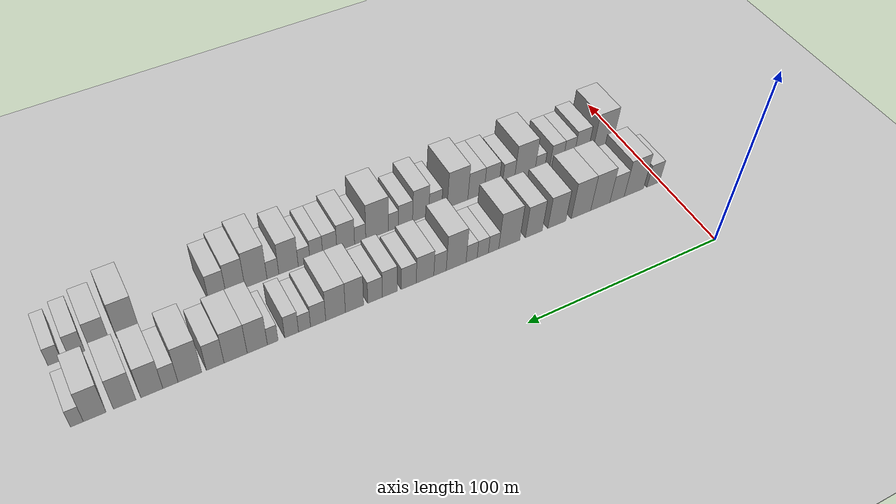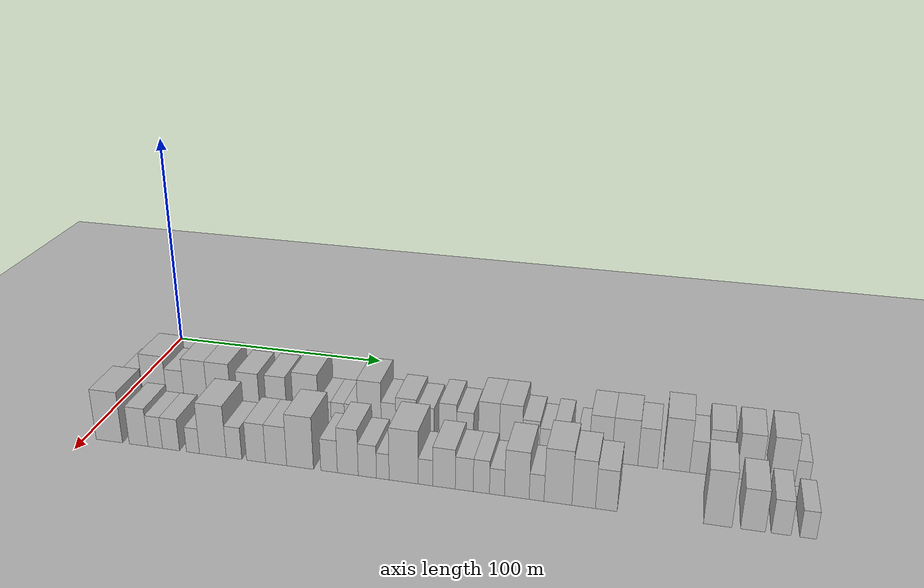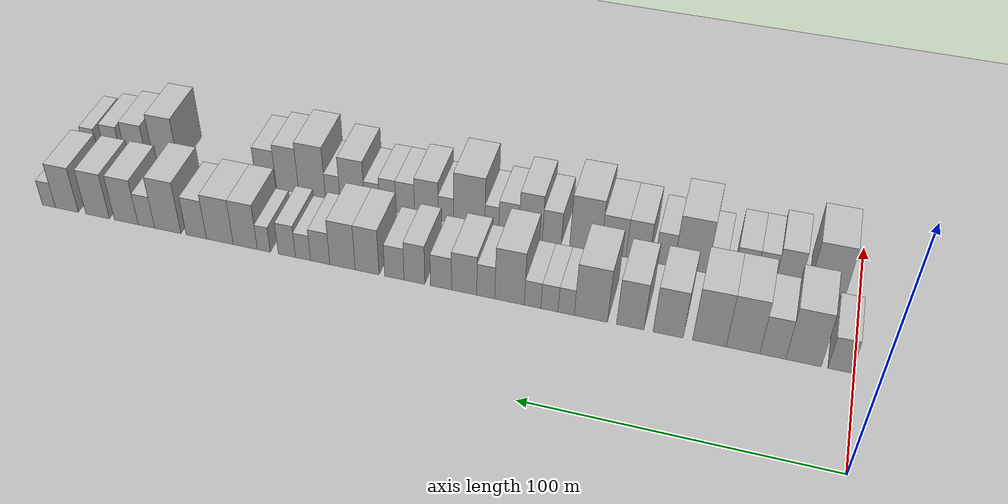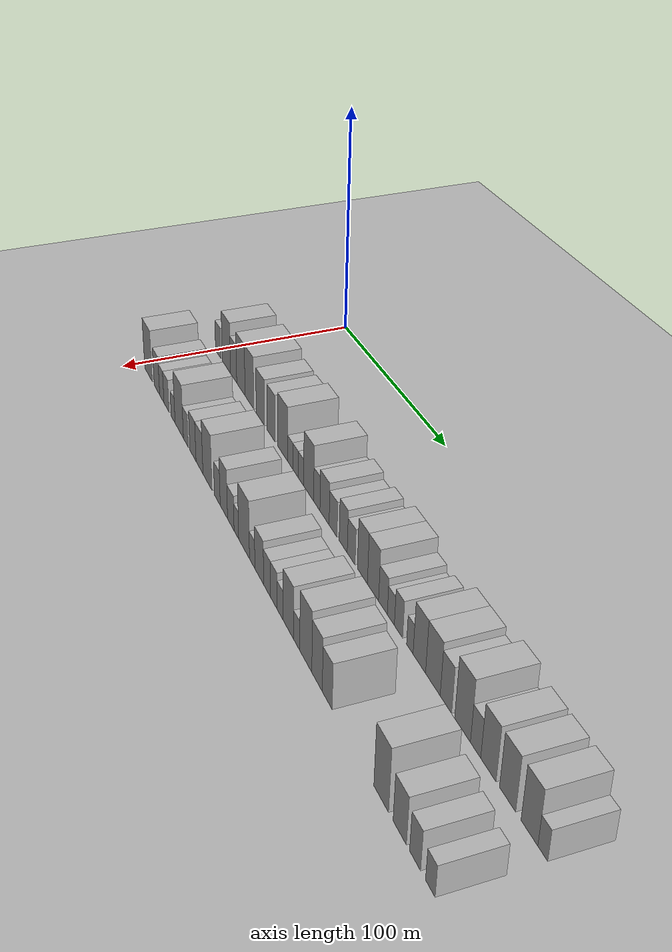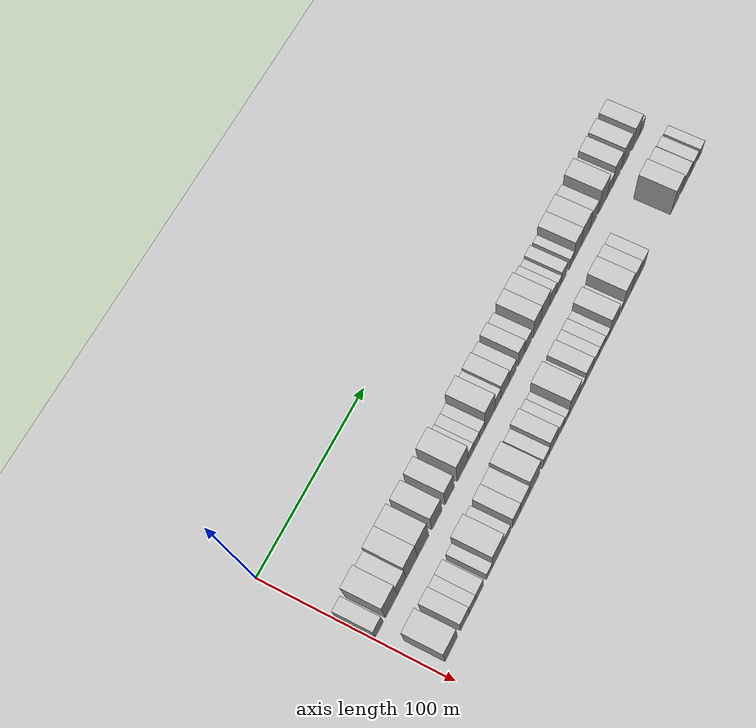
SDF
<sdf version="1.6">
 <world name="default">
  <include><name>ground_plane_1</name><uri>model://HANNAS_ground_plane</uri></include>
  <include>
   <name>ground_plane_2</name>
   <uri>model://HANNAS_ground_plane</uri>
   <pose>100 0 0  0 0 0</pose>
  </include>
  <model name="building_32">
   <static>1</static>
   <pose>50.0000 4.6460 0 0.000000 0.000000 0.000000</pose>
   <link name="link">
    <pose>0 0 7.50 0 0 0</pose>
    <collision name="collision"><geometry><box><size>20.0000 7.4196 15.0000</size></box></geometry></collision>
    <visual name="visual">
     <cast_shadows>0</cast_shadows>
     <geometry><box><size>20.0000 7.4196 15.0000</size></box></geometry>
     <material>
      <script>
       <uri>model://HANNAS_wall/materials/scripts</uri>
       <uri>model://HANNAS_wall/materials/textures</uri>
       <name>vrc/HANNAS_wall</name>
      </script>
     </material>
    </visual>
   </link>
  </model>
  <model name="building_33">
   <static>1</static>
   <pose>50.0000 15.9252 0 0.000000 0.000000 0.000000</pose>
   <link name="link">
    <pose>0 0 12.00 0 0 0</pose>
    <collision name="collision"><geometry><box><size>20.0000 11.1387 24.0000</size></box></geometry></collision>
    <visual name="visual">
     <cast_shadows>0</cast_shadows>
     <geometry><box><size>20.0000 11.1387 24.0000</size></box></geometry>
     <material>
      <script>
       <uri>model://HANNAS_wall/materials/scripts</uri>
       <uri>model://HANNAS_wall/materials/textures</uri>
       <name>vrc/HANNAS_wall</name>
      </script>
     </material>
    </visual>
   </link>
  </model>
  <model name="building_34">
   <static>1</static>
   <pose>50.0000 25.6019 0 0.000000 0.000000 0.000000</pose>
   <link name="link">
    <pose>0 0 9.00 0 0 0</pose>
    <collision name="collision"><geometry><box><size>20.0000 8.2147 18.0000</size></box></geometry></collision>
    <visual name="visual">
     <cast_shadows>0</cast_shadows>
     <geometry><box><size>20.0000 8.2147 18.0000</size></box></geometry>
     <material>
      <script>
       <uri>model://HANNAS_wall/materials/scripts</uri>
       <uri>model://HANNAS_wall/materials/textures</uri>
       <name>vrc/HANNAS_wall</name>
      </script>
     </material>
    </visual>
   </link>
  </model>
  <model name="building_35">
   <static>1</static>
   <pose>50.0000 35.0793 0 0.000000 0.000000 0.000000</pose>
   <link name="link">
    <pose>0 0 12.00 0 0 0</pose>
    <collision name="collision"><geometry><box><size>20.0000 10.7403 24.0000</size></box></geometry></collision>
    <visual name="visual">
     <cast_shadows>0</cast_shadows>
     <geometry><box><size>20.0000 10.7403 24.0000</size></box></geometry>
     <material>
      <script>
       <uri>model://HANNAS_wall/materials/scripts</uri>
       <uri>model://HANNAS_wall/materials/textures</uri>
       <name>vrc/HANNAS_wall</name>
      </script>
     </material>
    </visual>
   </link>
  </model>
  <model name="building_36">
   <static>1</static>
   <pose>50.0000 45.8633 0 0.000000 0.000000 0.000000</pose>
   <link name="link">
    <pose>0 0 12.00 0 0 0</pose>
    <collision name="collision"><geometry><box><size>20.0000 10.8276 24.0000</size></box></geometry></collision>
    <visual name="visual">
     <cast_shadows>0</cast_shadows>
     <geometry><box><size>20.0000 10.8276 24.0000</size></box></geometry>
     <material>
      <script>
       <uri>model://HANNAS_wall/materials/scripts</uri>
       <uri>model://HANNAS_wall/materials/textures</uri>
       <name>vrc/HANNAS_wall</name>
      </script>
     </material>
    </visual>
   </link>
  </model>
  <model name="building_37">
   <static>1</static>
   <pose>50.0000 59.2102 0 0.000000 0.000000 0.000000</pose>
   <link name="link">
    <pose>0 0 10.50 0 0 0</pose>
    <collision name="collision"><geometry><box><size>20.0000 9.8662 21.0000</size></box></geometry></collision>
    <visual name="visual">
     <cast_shadows>0</cast_shadows>
     <geometry><box><size>20.0000 9.8662 21.0000</size></box></geometry>
     <material>
      <script>
       <uri>model://HANNAS_wall/materials/scripts</uri>
       <uri>model://HANNAS_wall/materials/textures</uri>
       <name>vrc/HANNAS_wall</name>
      </script>
     </material>
    </visual>
   </link>
  </model>
  <model name="building_38">
   <static>1</static>
   <pose>50.0000 71.6752 0 0.000000 0.000000 0.000000</pose>
   <link name="link">
    <pose>0 0 10.50 0 0 0</pose>
    <collision name="collision"><geometry><box><size>20.0000 9.0639 21.0000</size></box></geometry></collision>
    <visual name="visual">
     <cast_shadows>0</cast_shadows>
     <geometry><box><size>20.0000 9.0639 21.0000</size></box></geometry>
     <material>
      <script>
       <uri>model://HANNAS_wall/materials/scripts</uri>
       <uri>model://HANNAS_wall/materials/textures</uri>
       <name>vrc/HANNAS_wall</name>
      </script>
     </material>
    </visual>
   </link>
  </model>
  <model name="building_39">
   <static>1</static>
   <pose>50.0000 84.7758 0 0.000000 0.000000 0.000000</pose>
   <link name="link">
    <pose>0 0 12.00 0 0 0</pose>
    <collision name="collision"><geometry><box><size>20.0000 11.1372 24.0000</size></box></geometry></collision>
    <visual name="visual">
     <cast_shadows>0</cast_shadows>
     <geometry><box><size>20.0000 11.1372 24.0000</size></box></geometry>
     <material>
      <script>
       <uri>model://HANNAS_wall/materials/scripts</uri>
       <uri>model://HANNAS_wall/materials/textures</uri>
       <name>vrc/HANNAS_wall</name>
      </script>
     </material>
    </visual>
   </link>
  </model>
  <model name="building_40">
   <static>1</static>
   <pose>50.0000 93.0737 0 0.000000 0.000000 0.000000</pose>
   <link name="link">
    <pose>0 0 6.00 0 0 0</pose>
    <collision name="collision"><geometry><box><size>20.0000 5.4587 12.0000</size></box></geometry></collision>
    <visual name="visual">
     <cast_shadows>0</cast_shadows>
     <geometry><box><size>20.0000 5.4587 12.0000</size></box></geometry>
     <material>
      <script>
       <uri>model://HANNAS_wall/materials/scripts</uri>
       <uri>model://HANNAS_wall/materials/textures</uri>
       <name>vrc/HANNAS_wall</name>
      </script>
     </material>
    </visual>
   </link>
  </model>
  <model name="building_41">
   <static>1</static>
   <pose>50.0000 98.7176 0 0.000000 0.000000 0.000000</pose>
   <link name="link">
    <pose>0 0 6.00 0 0 0</pose>
    <collision name="collision"><geometry><box><size>20.0000 5.8290 12.0000</size></box></geometry></collision>
    <visual name="visual">
     <cast_shadows>0</cast_shadows>
     <geometry><box><size>20.0000 5.8290 12.0000</size></box></geometry>
     <material>
      <script>
       <uri>model://HANNAS_wall/materials/scripts</uri>
       <uri>model://HANNAS_wall/materials/textures</uri>
       <name>vrc/HANNAS_wall</name>
      </script>
     </material>
    </visual>
   </link>
  </model>
  <model name="building_42">
   <static>1</static>
   <pose>50.0000 104.4853 0 0.000000 0.000000 0.000000</pose>
   <link name="link">
    <pose>0 0 6.00 0 0 0</pose>
    <collision name="collision"><geometry><box><size>20.0000 5.7064 12.0000</size></box></geometry></collision>
    <visual name="visual">
     <cast_shadows>0</cast_shadows>
     <geometry><box><size>20.0000 5.7064 12.0000</size></box></geometry>
     <material>
      <script>
       <uri>model://HANNAS_wall/materials/scripts</uri>
       <uri>model://HANNAS_wall/materials/textures</uri>
       <name>vrc/HANNAS_wall</name>
      </script>
     </material>
    </visual>
   </link>
  </model>
  <model name="building_43">
   <static>1</static>
   <pose>50.0000 112.4005 0 0.000000 0.000000 0.000000</pose>
   <link name="link">
    <pose>0 0 12.00 0 0 0</pose>
    <collision name="collision"><geometry><box><size>20.0000 10.1241 24.0000</size></box></geometry></collision>
    <visual name="visual">
     <cast_shadows>0</cast_shadows>
     <geometry><box><size>20.0000 10.1241 24.0000</size></box></geometry>
     <material>
      <script>
       <uri>model://HANNAS_wall/materials/scripts</uri>
       <uri>model://HANNAS_wall/materials/textures</uri>
       <name>vrc/HANNAS_wall</name>
      </script>
     </material>
    </visual>
   </link>
  </model>
  <model name="building_44">
   <static>1</static>
   <pose>50.0000 120.5870 0 0.000000 0.000000 0.000000</pose>
   <link name="link">
    <pose>0 0 7.50 0 0 0</pose>
    <collision name="collision"><geometry><box><size>20.0000 6.2488 15.0000</size></box></geometry></collision>
    <visual name="visual">
     <cast_shadows>0</cast_shadows>
     <geometry><box><size>20.0000 6.2488 15.0000</size></box></geometry>
     <material>
      <script>
       <uri>model://HANNAS_wall/materials/scripts</uri>
       <uri>model://HANNAS_wall/materials/textures</uri>
       <name>vrc/HANNAS_wall</name>
      </script>
     </material>
    </visual>
   </link>
  </model>
  <model name="building_45">
   <static>1</static>
   <pose>50.0000 128.1195 0 0.000000 0.000000 0.000000</pose>
   <link name="link">
    <pose>0 0 9.00 0 0 0</pose>
    <collision name="collision"><geometry><box><size>20.0000 8.8162 18.0000</size></box></geometry></collision>
    <visual name="visual">
     <cast_shadows>0</cast_shadows>
     <geometry><box><size>20.0000 8.8162 18.0000</size></box></geometry>
     <material>
      <script>
       <uri>model://HANNAS_wall/materials/scripts</uri>
       <uri>model://HANNAS_wall/materials/textures</uri>
       <name>vrc/HANNAS_wall</name>
      </script>
     </material>
    </visual>
   </link>
  </model>
  <model name="building_46">
   <static>1</static>
   <pose>50.0000 136.2203 0 0.000000 0.000000 0.000000</pose>
   <link name="link">
    <pose>0 0 7.50 0 0 0</pose>
    <collision name="collision"><geometry><box><size>20.0000 7.3854 15.0000</size></box></geometry></collision>
    <visual name="visual">
     <cast_shadows>0</cast_shadows>
     <geometry><box><size>20.0000 7.3854 15.0000</size></box></geometry>
     <material>
      <script>
       <uri>model://HANNAS_wall/materials/scripts</uri>
       <uri>model://HANNAS_wall/materials/textures</uri>
       <name>vrc/HANNAS_wall</name>
      </script>
     </material>
    </visual>
   </link>
  </model>
  <model name="building_47">
   <static>1</static>
   <pose>50.0000 145.5821 0 0.000000 0.000000 0.000000</pose>
   <link name="link">
    <pose>0 0 9.00 0 0 0</pose>
    <collision name="collision"><geometry><box><size>20.0000 7.3381 18.0000</size></box></geometry></collision>
    <visual name="visual">
     <cast_shadows>0</cast_shadows>
     <geometry><box><size>20.0000 7.3381 18.0000</size></box></geometry>
     <material>
      <script>
       <uri>model://HANNAS_wall/materials/scripts</uri>
       <uri>model://HANNAS_wall/materials/textures</uri>
       <name>vrc/HANNAS_wall</name>
      </script>
     </material>
    </visual>
   </link>
  </model>
  <model name="building_48">
   <static>1</static>
   <pose>50.0000 152.7194 0 0.000000 0.000000 0.000000</pose>
   <link name="link">
    <pose>0 0 7.50 0 0 0</pose>
    <collision name="collision"><geometry><box><size>20.0000 6.9367 15.0000</size></box></geometry></collision>
    <visual name="visual">
     <cast_shadows>0</cast_shadows>
     <geometry><box><size>20.0000 6.9367 15.0000</size></box></geometry>
     <material>
      <script>
       <uri>model://HANNAS_wall/materials/scripts</uri>
       <uri>model://HANNAS_wall/materials/textures</uri>
       <name>vrc/HANNAS_wall</name>
      </script>
     </material>
    </visual>
   </link>
  </model>
  <model name="building_49">
   <static>1</static>
   <pose>50.0000 162.5061 0 0.000000 0.000000 0.000000</pose>
   <link name="link">
    <pose>0 0 10.50 0 0 0</pose>
    <collision name="collision"><geometry><box><size>20.0000 8.6366 21.0000</size></box></geometry></collision>
    <visual name="visual">
     <cast_shadows>0</cast_shadows>
     <geometry><box><size>20.0000 8.6366 21.0000</size></box></geometry>
     <material>
      <script>
       <uri>model://HANNAS_wall/materials/scripts</uri>
       <uri>model://HANNAS_wall/materials/textures</uri>
       <name>vrc/HANNAS_wall</name>
      </script>
     </material>
    </visual>
   </link>
  </model>
  <model name="building_50">
   <static>1</static>
   <pose>50.0000 171.4507 0 0.000000 0.000000 0.000000</pose>
   <link name="link">
    <pose>0 0 10.50 0 0 0</pose>
    <collision name="collision"><geometry><box><size>20.0000 9.2527 21.0000</size></box></geometry></collision>
    <visual name="visual">
     <cast_shadows>0</cast_shadows>
     <geometry><box><size>20.0000 9.2527 21.0000</size></box></geometry>
     <material>
      <script>
       <uri>model://HANNAS_wall/materials/scripts</uri>
       <uri>model://HANNAS_wall/materials/textures</uri>
       <name>vrc/HANNAS_wall</name>
      </script>
     </material>
    </visual>
   </link>
  </model>
  <model name="building_51">
   <static>1</static>
   <pose>50.0000 179.6038 0 0.000000 0.000000 0.000000</pose>
   <link name="link">
    <pose>0 0 7.50 0 0 0</pose>
    <collision name="collision"><geometry><box><size>20.0000 7.0533 15.0000</size></box></geometry></collision>
    <visual name="visual">
     <cast_shadows>0</cast_shadows>
     <geometry><box><size>20.0000 7.0533 15.0000</size></box></geometry>
     <material>
      <script>
       <uri>model://HANNAS_wall/materials/scripts</uri>
       <uri>model://HANNAS_wall/materials/textures</uri>
       <name>vrc/HANNAS_wall</name>
      </script>
     </material>
    </visual>
   </link>
  </model>
  <model name="building_52">
   <static>1</static>
   <pose>50.0000 185.9106 0 0.000000 0.000000 0.000000</pose>
   <link name="link">
    <pose>0 0 6.00 0 0 0</pose>
    <collision name="collision"><geometry><box><size>20.0000 5.5605 12.0000</size></box></geometry></collision>
    <visual name="visual">
     <cast_shadows>0</cast_shadows>
     <geometry><box><size>20.0000 5.5605 12.0000</size></box></geometry>
     <material>
      <script>
       <uri>model://HANNAS_wall/materials/scripts</uri>
       <uri>model://HANNAS_wall/materials/textures</uri>
       <name>vrc/HANNAS_wall</name>
      </script>
     </material>
    </visual>
   </link>
  </model>
  <model name="building_53">
   <static>1</static>
   <pose>50.0000 191.8633 0 0.000000 0.000000 0.000000</pose>
   <link name="link">
    <pose>0 0 7.50 0 0 0</pose>
    <collision name="collision"><geometry><box><size>20.0000 6.3448 15.0000</size></box></geometry></collision>
    <visual name="visual">
     <cast_shadows>0</cast_shadows>
     <geometry><box><size>20.0000 6.3448 15.0000</size></box></geometry>
     <material>
      <script>
       <uri>model://HANNAS_wall/materials/scripts</uri>
       <uri>model://HANNAS_wall/materials/textures</uri>
       <name>vrc/HANNAS_wall</name>
      </script>
     </material>
    </visual>
   </link>
  </model>
  <model name="building_54">
   <static>1</static>
   <pose>50.0000 200.4513 0 0.000000 0.000000 0.000000</pose>
   <link name="link">
    <pose>0 0 6.00 0 0 0</pose>
    <collision name="collision"><geometry><box><size>20.0000 4.8313 12.0000</size></box></geometry></collision>
    <visual name="visual">
     <cast_shadows>0</cast_shadows>
     <geometry><box><size>20.0000 4.8313 12.0000</size></box></geometry>
     <material>
      <script>
       <uri>model://HANNAS_wall/materials/scripts</uri>
       <uri>model://HANNAS_wall/materials/textures</uri>
       <name>vrc/HANNAS_wall</name>
      </script>
     </material>
    </visual>
   </link>
  </model>
  <model name="building_55">
   <static>1</static>
   <pose>50.0000 207.3987 0 0.000000 0.000000 0.000000</pose>
   <link name="link">
    <pose>0 0 10.50 0 0 0</pose>
    <collision name="collision"><geometry><box><size>20.0000 9.0634 21.0000</size></box></geometry></collision>
    <visual name="visual">
     <cast_shadows>0</cast_shadows>
     <geometry><box><size>20.0000 9.0634 21.0000</size></box></geometry>
     <material>
      <script>
       <uri>model://HANNAS_wall/materials/scripts</uri>
       <uri>model://HANNAS_wall/materials/textures</uri>
       <name>vrc/HANNAS_wall</name>
      </script>
     </material>
    </visual>
   </link>
  </model>
  <model name="building_56">
   <static>1</static>
   <pose>50.0000 217.0334 0 0.000000 0.000000 0.000000</pose>
   <link name="link">
    <pose>0 0 10.50 0 0 0</pose>
    <collision name="collision"><geometry><box><size>20.0000 10.2062 21.0000</size></box></geometry></collision>
    <visual name="visual">
     <cast_shadows>0</cast_shadows>
     <geometry><box><size>20.0000 10.2062 21.0000</size></box></geometry>
     <material>
      <script>
       <uri>model://HANNAS_wall/materials/scripts</uri>
       <uri>model://HANNAS_wall/materials/textures</uri>
       <name>vrc/HANNAS_wall</name>
      </script>
     </material>
    </visual>
   </link>
  </model>
  <model name="building_57">
   <static>1</static>
   <pose>50.0000 226.0095 0 0.000000 0.000000 0.000000</pose>
   <link name="link">
    <pose>0 0 9.00 0 0 0</pose>
    <collision name="collision"><geometry><box><size>20.0000 7.7459 18.0000</size></box></geometry></collision>
    <visual name="visual">
     <cast_shadows>0</cast_shadows>
     <geometry><box><size>20.0000 7.7459 18.0000</size></box></geometry>
     <material>
      <script>
       <uri>model://HANNAS_wall/materials/scripts</uri>
       <uri>model://HANNAS_wall/materials/textures</uri>
       <name>vrc/HANNAS_wall</name>
      </script>
     </material>
    </visual>
   </link>
  </model>
  <model name="building_58">
   <static>1</static>
   <pose>50.0000 236.9775 0 0.000000 0.000000 0.000000</pose>
   <link name="link">
    <pose>0 0 12.00 0 0 0</pose>
    <collision name="collision"><geometry><box><size>20.0000 10.1901 24.0000</size></box></geometry></collision>
    <visual name="visual">
     <cast_shadows>0</cast_shadows>
     <geometry><box><size>20.0000 10.1901 24.0000</size></box></geometry>
     <material>
      <script>
       <uri>model://HANNAS_wall/materials/scripts</uri>
       <uri>model://HANNAS_wall/materials/textures</uri>
       <name>vrc/HANNAS_wall</name>
      </script>
     </material>
    </visual>
   </link>
  </model>
  <model name="building_59">
   <static>1</static>
   <pose>50.0000 245.2832 0 0.000000 0.000000 0.000000</pose>
   <link name="link">
    <pose>0 0 7.50 0 0 0</pose>
    <collision name="collision"><geometry><box><size>20.0000 6.4213 15.0000</size></box></geometry></collision>
    <visual name="visual">
     <cast_shadows>0</cast_shadows>
     <geometry><box><size>20.0000 6.4213 15.0000</size></box></geometry>
     <material>
      <script>
       <uri>model://HANNAS_wall/materials/scripts</uri>
       <uri>model://HANNAS_wall/materials/textures</uri>
       <name>vrc/HANNAS_wall</name>
      </script>
     </material>
    </visual>
   </link>
  </model>
  <model name="building_60">
   <static>1</static>
   <pose>50.0000 253.1421 0 0.000000 0.000000 0.000000</pose>
   <link name="link">
    <pose>0 0 10.50 0 0 0</pose>
    <collision name="collision"><geometry><box><size>20.0000 9.2964 21.0000</size></box></geometry></collision>
    <visual name="visual">
     <cast_shadows>0</cast_shadows>
     <geometry><box><size>20.0000 9.2964 21.0000</size></box></geometry>
     <material>
      <script>
       <uri>model://HANNAS_wall/materials/scripts</uri>
       <uri>model://HANNAS_wall/materials/textures</uri>
       <name>vrc/HANNAS_wall</name>
      </script>
     </material>
    </visual>
   </link>
  </model>
  <model name="building_61">
   <static>1</static>
   <pose>50.0000 264.4500 0 0.000000 0.000000 0.000000</pose>
   <link name="link">
    <pose>0 0 10.50 0 0 0</pose>
    <collision name="collision"><geometry><box><size>20.0000 9.3195 21.0000</size></box></geometry></collision>
    <visual name="visual">
     <cast_shadows>0</cast_shadows>
     <geometry><box><size>20.0000 9.3195 21.0000</size></box></geometry>
     <material>
      <script>
       <uri>model://HANNAS_wall/materials/scripts</uri>
       <uri>model://HANNAS_wall/materials/textures</uri>
       <name>vrc/HANNAS_wall</name>
      </script>
     </material>
    </visual>
   </link>
  </model>
  <model name="building_62">
   <static>1</static>
   <pose>50.0000 276.6973 0 0.000000 0.000000 0.000000</pose>
   <link name="link">
    <pose>0 0 10.50 0 0 0</pose>
    <collision name="collision"><geometry><box><size>20.0000 9.1751 21.0000</size></box></geometry></collision>
    <visual name="visual">
     <cast_shadows>0</cast_shadows>
     <geometry><box><size>20.0000 9.1751 21.0000</size></box></geometry>
     <material>
      <script>
       <uri>model://HANNAS_wall/materials/scripts</uri>
       <uri>model://HANNAS_wall/materials/textures</uri>
       <name>vrc/HANNAS_wall</name>
      </script>
     </material>
    </visual>
   </link>
  </model>
  <model name="building_63">
   <static>1</static>
   <pose>50.0000 283.9073 0 0.000000 0.000000 0.000000</pose>
   <link name="link">
    <pose>0 0 6.00 0 0 0</pose>
    <collision name="collision"><geometry><box><size>20.0000 5.2448 12.0000</size></box></geometry></collision>
    <visual name="visual">
     <cast_shadows>0</cast_shadows>
     <geometry><box><size>20.0000 5.2448 12.0000</size></box></geometry>
     <material>
      <script>
       <uri>model://HANNAS_wall/materials/scripts</uri>
       <uri>model://HANNAS_wall/materials/textures</uri>
       <name>vrc/HANNAS_wall</name>
      </script>
     </material>
    </visual>
   </link>
  </model>
  <model name="building_95">
   <static>1</static>
   <pose>82.0000 11.1580 0 0.000000 0.000000 0.000000</pose>
   <link name="link">
    <pose>0 0 12.00 0 0 0</pose>
    <collision name="collision"><geometry><box><size>20.0000 11.8178 24.0000</size></box></geometry></collision>
    <visual name="visual">
     <cast_shadows>0</cast_shadows>
     <geometry><box><size>20.0000 11.8178 24.0000</size></box></geometry>
     <material>
      <script>
       <uri>model://HANNAS_wall/materials/scripts</uri>
       <uri>model://HANNAS_wall/materials/textures</uri>
       <name>vrc/HANNAS_wall</name>
      </script>
     </material>
    </visual>
   </link>
  </model>
  <model name="building_96">
   <static>1</static>
   <pose>82.0000 24.2129 0 0.000000 0.000000 0.000000</pose>
   <link name="link">
    <pose>0 0 9.00 0 0 0</pose>
    <collision name="collision"><geometry><box><size>20.0000 8.2920 18.0000</size></box></geometry></collision>
    <visual name="visual">
     <cast_shadows>0</cast_shadows>
     <geometry><box><size>20.0000 8.2920 18.0000</size></box></geometry>
     <material>
      <script>
       <uri>model://HANNAS_wall/materials/scripts</uri>
       <uri>model://HANNAS_wall/materials/textures</uri>
       <name>vrc/HANNAS_wall</name>
      </script>
     </material>
    </visual>
   </link>
  </model>
  <model name="building_97">
   <static>1</static>
   <pose>82.0000 31.5402 0 0.000000 0.000000 0.000000</pose>
   <link name="link">
    <pose>0 0 7.50 0 0 0</pose>
    <collision name="collision"><geometry><box><size>20.0000 6.3626 15.0000</size></box></geometry></collision>
    <visual name="visual">
     <cast_shadows>0</cast_shadows>
     <geometry><box><size>20.0000 6.3626 15.0000</size></box></geometry>
     <material>
      <script>
       <uri>model://HANNAS_wall/materials/scripts</uri>
       <uri>model://HANNAS_wall/materials/textures</uri>
       <name>vrc/HANNAS_wall</name>
      </script>
     </material>
    </visual>
   </link>
  </model>
  <model name="building_98">
   <static>1</static>
   <pose>82.0000 38.4509 0 0.000000 0.000000 0.000000</pose>
   <link name="link">
    <pose>0 0 7.50 0 0 0</pose>
    <collision name="collision"><geometry><box><size>20.0000 7.4589 15.0000</size></box></geometry></collision>
    <visual name="visual">
     <cast_shadows>0</cast_shadows>
     <geometry><box><size>20.0000 7.4589 15.0000</size></box></geometry>
     <material>
      <script>
       <uri>model://HANNAS_wall/materials/scripts</uri>
       <uri>model://HANNAS_wall/materials/textures</uri>
       <name>vrc/HANNAS_wall</name>
      </script>
     </material>
    </visual>
   </link>
  </model>
  <model name="building_99">
   <static>1</static>
   <pose>82.0000 48.0094 0 0.000000 0.000000 0.000000</pose>
   <link name="link">
    <pose>0 0 6.00 0 0 0</pose>
    <collision name="collision"><geometry><box><size>20.0000 5.6580 12.0000</size></box></geometry></collision>
    <visual name="visual">
     <cast_shadows>0</cast_shadows>
     <geometry><box><size>20.0000 5.6580 12.0000</size></box></geometry>
     <material>
      <script>
       <uri>model://HANNAS_wall/materials/scripts</uri>
       <uri>model://HANNAS_wall/materials/textures</uri>
       <name>vrc/HANNAS_wall</name>
      </script>
     </material>
    </visual>
   </link>
  </model>
  <model name="building_100">
   <static>1</static>
   <pose>82.0000 56.5760 0 0.000000 0.000000 0.000000</pose>
   <link name="link">
    <pose>0 0 12.00 0 0 0</pose>
    <collision name="collision"><geometry><box><size>20.0000 11.4752 24.0000</size></box></geometry></collision>
    <visual name="visual">
     <cast_shadows>0</cast_shadows>
     <geometry><box><size>20.0000 11.4752 24.0000</size></box></geometry>
     <material>
      <script>
       <uri>model://HANNAS_wall/materials/scripts</uri>
       <uri>model://HANNAS_wall/materials/textures</uri>
       <name>vrc/HANNAS_wall</name>
      </script>
     </material>
    </visual>
   </link>
  </model>
  <model name="building_101">
   <static>1</static>
   <pose>82.0000 65.6288 0 0.000000 0.000000 0.000000</pose>
   <link name="link">
    <pose>0 0 7.50 0 0 0</pose>
    <collision name="collision"><geometry><box><size>20.0000 6.6303 15.0000</size></box></geometry></collision>
    <visual name="visual">
     <cast_shadows>0</cast_shadows>
     <geometry><box><size>20.0000 6.6303 15.0000</size></box></geometry>
     <material>
      <script>
       <uri>model://HANNAS_wall/materials/scripts</uri>
       <uri>model://HANNAS_wall/materials/textures</uri>
       <name>vrc/HANNAS_wall</name>
      </script>
     </material>
    </visual>
   </link>
  </model>
  <model name="building_102">
   <static>1</static>
   <pose>82.0000 74.9657 0 0.000000 0.000000 0.000000</pose>
   <link name="link">
    <pose>0 0 9.00 0 0 0</pose>
    <collision name="collision"><geometry><box><size>20.0000 8.0436 18.0000</size></box></geometry></collision>
    <visual name="visual">
     <cast_shadows>0</cast_shadows>
     <geometry><box><size>20.0000 8.0436 18.0000</size></box></geometry>
     <material>
      <script>
       <uri>model://HANNAS_wall/materials/scripts</uri>
       <uri>model://HANNAS_wall/materials/textures</uri>
       <name>vrc/HANNAS_wall</name>
      </script>
     </material>
    </visual>
   </link>
  </model>
  <model name="building_103">
   <static>1</static>
   <pose>82.0000 83.3929 0 0.000000 0.000000 0.000000</pose>
   <link name="link">
    <pose>0 0 9.00 0 0 0</pose>
    <collision name="collision"><geometry><box><size>20.0000 8.8109 18.0000</size></box></geometry></collision>
    <visual name="visual">
     <cast_shadows>0</cast_shadows>
     <geometry><box><size>20.0000 8.8109 18.0000</size></box></geometry>
     <material>
      <script>
       <uri>model://HANNAS_wall/materials/scripts</uri>
       <uri>model://HANNAS_wall/materials/textures</uri>
       <name>vrc/HANNAS_wall</name>
      </script>
     </material>
    </visual>
   </link>
  </model>
  <model name="building_104">
   <static>1</static>
   <pose>82.0000 93.3512 0 0.000000 0.000000 0.000000</pose>
   <link name="link">
    <pose>0 0 12.00 0 0 0</pose>
    <collision name="collision"><geometry><box><size>20.0000 11.1056 24.0000</size></box></geometry></collision>
    <visual name="visual">
     <cast_shadows>0</cast_shadows>
     <geometry><box><size>20.0000 11.1056 24.0000</size></box></geometry>
     <material>
      <script>
       <uri>model://HANNAS_wall/materials/scripts</uri>
       <uri>model://HANNAS_wall/materials/textures</uri>
       <name>vrc/HANNAS_wall</name>
      </script>
     </material>
    </visual>
   </link>
  </model>
  <model name="building_105">
   <static>1</static>
   <pose>82.0000 105.3030 0 0.000000 0.000000 0.000000</pose>
   <link name="link">
    <pose>0 0 7.50 0 0 0</pose>
    <collision name="collision"><geometry><box><size>20.0000 6.7982 15.0000</size></box></geometry></collision>
    <visual name="visual">
     <cast_shadows>0</cast_shadows>
     <geometry><box><size>20.0000 6.7982 15.0000</size></box></geometry>
     <material>
      <script>
       <uri>model://HANNAS_wall/materials/scripts</uri>
       <uri>model://HANNAS_wall/materials/textures</uri>
       <name>vrc/HANNAS_wall</name>
      </script>
     </material>
    </visual>
   </link>
  </model>
  <model name="building_106">
   <static>1</static>
   <pose>82.0000 112.9357 0 0.000000 0.000000 0.000000</pose>
   <link name="link">
    <pose>0 0 10.50 0 0 0</pose>
    <collision name="collision"><geometry><box><size>20.0000 8.4670 21.0000</size></box></geometry></collision>
    <visual name="visual">
     <cast_shadows>0</cast_shadows>
     <geometry><box><size>20.0000 8.4670 21.0000</size></box></geometry>
     <material>
      <script>
       <uri>model://HANNAS_wall/materials/scripts</uri>
       <uri>model://HANNAS_wall/materials/textures</uri>
       <name>vrc/HANNAS_wall</name>
      </script>
     </material>
    </visual>
   </link>
  </model>
  <model name="building_107">
   <static>1</static>
   <pose>82.0000 120.8515 0 0.000000 0.000000 0.000000</pose>
   <link name="link">
    <pose>0 0 7.50 0 0 0</pose>
    <collision name="collision"><geometry><box><size>20.0000 7.3646 15.0000</size></box></geometry></collision>
    <visual name="visual">
     <cast_shadows>0</cast_shadows>
     <geometry><box><size>20.0000 7.3646 15.0000</size></box></geometry>
     <material>
      <script>
       <uri>model://HANNAS_wall/materials/scripts</uri>
       <uri>model://HANNAS_wall/materials/textures</uri>
       <name>vrc/HANNAS_wall</name>
      </script>
     </material>
    </visual>
   </link>
  </model>
  <model name="building_108">
   <static>1</static>
   <pose>82.0000 127.0557 0 0.000000 0.000000 0.000000</pose>
   <link name="link">
    <pose>0 0 6.00 0 0 0</pose>
    <collision name="collision"><geometry><box><size>20.0000 5.0438 12.0000</size></box></geometry></collision>
    <visual name="visual">
     <cast_shadows>0</cast_shadows>
     <geometry><box><size>20.0000 5.0438 12.0000</size></box></geometry>
     <material>
      <script>
       <uri>model://HANNAS_wall/materials/scripts</uri>
       <uri>model://HANNAS_wall/materials/textures</uri>
       <name>vrc/HANNAS_wall</name>
      </script>
     </material>
    </visual>
   </link>
  </model>
  <model name="building_109">
   <static>1</static>
   <pose>82.0000 135.3731 0 0.000000 0.000000 0.000000</pose>
   <link name="link">
    <pose>0 0 12.00 0 0 0</pose>
    <collision name="collision"><geometry><box><size>20.0000 11.5910 24.0000</size></box></geometry></collision>
    <visual name="visual">
     <cast_shadows>0</cast_shadows>
     <geometry><box><size>20.0000 11.5910 24.0000</size></box></geometry>
     <material>
      <script>
       <uri>model://HANNAS_wall/materials/scripts</uri>
       <uri>model://HANNAS_wall/materials/textures</uri>
       <name>vrc/HANNAS_wall</name>
      </script>
     </material>
    </visual>
   </link>
  </model>
  <model name="building_110">
   <static>1</static>
   <pose>82.0000 143.9964 0 0.000000 0.000000 0.000000</pose>
   <link name="link">
    <pose>0 0 6.00 0 0 0</pose>
    <collision name="collision"><geometry><box><size>20.0000 5.6556 12.0000</size></box></geometry></collision>
    <visual name="visual">
     <cast_shadows>0</cast_shadows>
     <geometry><box><size>20.0000 5.6556 12.0000</size></box></geometry>
     <material>
      <script>
       <uri>model://HANNAS_wall/materials/scripts</uri>
       <uri>model://HANNAS_wall/materials/textures</uri>
       <name>vrc/HANNAS_wall</name>
      </script>
     </material>
    </visual>
   </link>
  </model>
  <model name="building_111">
   <static>1</static>
   <pose>82.0000 151.2236 0 0.000000 0.000000 0.000000</pose>
   <link name="link">
    <pose>0 0 9.00 0 0 0</pose>
    <collision name="collision"><geometry><box><size>20.0000 8.7989 18.0000</size></box></geometry></collision>
    <visual name="visual">
     <cast_shadows>0</cast_shadows>
     <geometry><box><size>20.0000 8.7989 18.0000</size></box></geometry>
     <material>
      <script>
       <uri>model://HANNAS_wall/materials/scripts</uri>
       <uri>model://HANNAS_wall/materials/textures</uri>
       <name>vrc/HANNAS_wall</name>
      </script>
     </material>
    </visual>
   </link>
  </model>
  <model name="building_112">
   <static>1</static>
   <pose>82.0000 159.1057 0 0.000000 0.000000 0.000000</pose>
   <link name="link">
    <pose>0 0 7.50 0 0 0</pose>
    <collision name="collision"><geometry><box><size>20.0000 6.9651 15.0000</size></box></geometry></collision>
    <visual name="visual">
     <cast_shadows>0</cast_shadows>
     <geometry><box><size>20.0000 6.9651 15.0000</size></box></geometry>
     <material>
      <script>
       <uri>model://HANNAS_wall/materials/scripts</uri>
       <uri>model://HANNAS_wall/materials/textures</uri>
       <name>vrc/HANNAS_wall</name>
      </script>
     </material>
    </visual>
   </link>
  </model>
  <model name="building_113">
   <static>1</static>
   <pose>82.0000 165.7114 0 0.000000 0.000000 0.000000</pose>
   <link name="link">
    <pose>0 0 7.50 0 0 0</pose>
    <collision name="collision"><geometry><box><size>20.0000 6.2464 15.0000</size></box></geometry></collision>
    <visual name="visual">
     <cast_shadows>0</cast_shadows>
     <geometry><box><size>20.0000 6.2464 15.0000</size></box></geometry>
     <material>
      <script>
       <uri>model://HANNAS_wall/materials/scripts</uri>
       <uri>model://HANNAS_wall/materials/textures</uri>
       <name>vrc/HANNAS_wall</name>
      </script>
     </material>
    </visual>
   </link>
  </model>
  <model name="building_114">
   <static>1</static>
   <pose>82.0000 171.7053 0 0.000000 0.000000 0.000000</pose>
   <link name="link">
    <pose>0 0 6.00 0 0 0</pose>
    <collision name="collision"><geometry><box><size>20.0000 5.7413 12.0000</size></box></geometry></collision>
    <visual name="visual">
     <cast_shadows>0</cast_shadows>
     <geometry><box><size>20.0000 5.7413 12.0000</size></box></geometry>
     <material>
      <script>
       <uri>model://HANNAS_wall/materials/scripts</uri>
       <uri>model://HANNAS_wall/materials/textures</uri>
       <name>vrc/HANNAS_wall</name>
      </script>
     </material>
    </visual>
   </link>
  </model>
  <model name="building_115">
   <static>1</static>
   <pose>82.0000 179.2514 0 0.000000 0.000000 0.000000</pose>
   <link name="link">
    <pose>0 0 10.50 0 0 0</pose>
    <collision name="collision"><geometry><box><size>20.0000 9.3510 21.0000</size></box></geometry></collision>
    <visual name="visual">
     <cast_shadows>0</cast_shadows>
     <geometry><box><size>20.0000 9.3510 21.0000</size></box></geometry>
     <material>
      <script>
       <uri>model://HANNAS_wall/materials/scripts</uri>
       <uri>model://HANNAS_wall/materials/textures</uri>
       <name>vrc/HANNAS_wall</name>
      </script>
     </material>
    </visual>
   </link>
  </model>
  <model name="building_116">
   <static>1</static>
   <pose>82.0000 186.7423 0 0.000000 0.000000 0.000000</pose>
   <link name="link">
    <pose>0 0 6.00 0 0 0</pose>
    <collision name="collision"><geometry><box><size>20.0000 5.6307 12.0000</size></box></geometry></collision>
    <visual name="visual">
     <cast_shadows>0</cast_shadows>
     <geometry><box><size>20.0000 5.6307 12.0000</size></box></geometry>
     <material>
      <script>
       <uri>model://HANNAS_wall/materials/scripts</uri>
       <uri>model://HANNAS_wall/materials/textures</uri>
       <name>vrc/HANNAS_wall</name>
      </script>
     </material>
    </visual>
   </link>
  </model>
  <model name="building_117">
   <static>1</static>
   <pose>82.0000 194.7573 0 0.000000 0.000000 0.000000</pose>
   <link name="link">
    <pose>0 0 12.00 0 0 0</pose>
    <collision name="collision"><geometry><box><size>20.0000 10.3993 24.0000</size></box></geometry></collision>
    <visual name="visual">
     <cast_shadows>0</cast_shadows>
     <geometry><box><size>20.0000 10.3993 24.0000</size></box></geometry>
     <material>
      <script>
       <uri>model://HANNAS_wall/materials/scripts</uri>
       <uri>model://HANNAS_wall/materials/textures</uri>
       <name>vrc/HANNAS_wall</name>
      </script>
     </material>
    </visual>
   </link>
  </model>
  <model name="building_118">
   <static>1</static>
   <pose>82.0000 204.3193 0 0.000000 0.000000 0.000000</pose>
   <link name="link">
    <pose>0 0 10.50 0 0 0</pose>
    <collision name="collision"><geometry><box><size>20.0000 8.7248 21.0000</size></box></geometry></collision>
    <visual name="visual">
     <cast_shadows>0</cast_shadows>
     <geometry><box><size>20.0000 8.7248 21.0000</size></box></geometry>
     <material>
      <script>
       <uri>model://HANNAS_wall/materials/scripts</uri>
       <uri>model://HANNAS_wall/materials/textures</uri>
       <name>vrc/HANNAS_wall</name>
      </script>
     </material>
    </visual>
   </link>
  </model>
  <model name="building_119">
   <static>1</static>
   <pose>82.0000 212.6781 0 0.000000 0.000000 0.000000</pose>
   <link name="link">
    <pose>0 0 9.00 0 0 0</pose>
    <collision name="collision"><geometry><box><size>20.0000 7.9929 18.0000</size></box></geometry></collision>
    <visual name="visual">
     <cast_shadows>0</cast_shadows>
     <geometry><box><size>20.0000 7.9929 18.0000</size></box></geometry>
     <material>
      <script>
       <uri>model://HANNAS_wall/materials/scripts</uri>
       <uri>model://HANNAS_wall/materials/textures</uri>
       <name>vrc/HANNAS_wall</name>
      </script>
     </material>
    </visual>
   </link>
  </model>
  <model name="building_120">
   <static>1</static>
   <pose>82.0000 252.7115 0 0.000000 0.000000 0.000000</pose>
   <link name="link">
    <pose>0 0 12.00 0 0 0</pose>
    <collision name="collision"><geometry><box><size>20.0000 10.0246 24.0000</size></box></geometry></collision>
    <visual name="visual">
     <cast_shadows>0</cast_shadows>
     <geometry><box><size>20.0000 10.0246 24.0000</size></box></geometry>
     <material>
      <script>
       <uri>model://HANNAS_wall/materials/scripts</uri>
       <uri>model://HANNAS_wall/materials/textures</uri>
       <name>vrc/HANNAS_wall</name>
      </script>
     </material>
    </visual>
   </link>
  </model>
  <model name="building_121">
   <static>1</static>
   <pose>82.0000 265.0363 0 0.000000 0.000000 0.000000</pose>
   <link name="link">
    <pose>0 0 9.00 0 0 0</pose>
    <collision name="collision"><geometry><box><size>20.0000 8.6249 18.0000</size></box></geometry></collision>
    <visual name="visual">
     <cast_shadows>0</cast_shadows>
     <geometry><box><size>20.0000 8.6249 18.0000</size></box></geometry>
     <material>
      <script>
       <uri>model://HANNAS_wall/materials/scripts</uri>
       <uri>model://HANNAS_wall/materials/textures</uri>
       <name>vrc/HANNAS_wall</name>
      </script>
     </material>
    </visual>
   </link>
  </model>
  <model name="building_122">
   <static>1</static>
   <pose>82.0000 274.7552 0 0.000000 0.000000 0.000000</pose>
   <link name="link">
    <pose>0 0 7.50 0 0 0</pose>
    <collision name="collision"><geometry><box><size>20.0000 6.8129 15.0000</size></box></geometry></collision>
    <visual name="visual">
     <cast_shadows>0</cast_shadows>
     <geometry><box><size>20.0000 6.8129 15.0000</size></box></geometry>
     <material>
      <script>
       <uri>model://HANNAS_wall/materials/scripts</uri>
       <uri>model://HANNAS_wall/materials/textures</uri>
       <name>vrc/HANNAS_wall</name>
      </script>
     </material>
    </visual>
   </link>
  </model>
  <model name="building_123">
   <static>1</static>
   <pose>82.0000 284.0158 0 0.000000 0.000000 0.000000</pose>
   <link name="link">
    <pose>0 0 6.00 0 0 0</pose>
    <collision name="collision"><geometry><box><size>20.0000 5.7085 12.0000</size></box></geometry></collision>
    <visual name="visual">
     <cast_shadows>0</cast_shadows>
     <geometry><box><size>20.0000 5.7085 12.0000</size></box></geometry>
     <material>
      <script>
       <uri>model://HANNAS_wall/materials/scripts</uri>
       <uri>model://HANNAS_wall/materials/textures</uri>
       <name>vrc/HANNAS_wall</name>
      </script>
     </material>
    </visual>
   </link>
  </model>
 </world>
</sdf>
